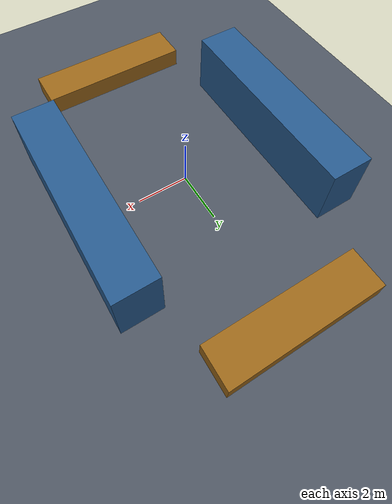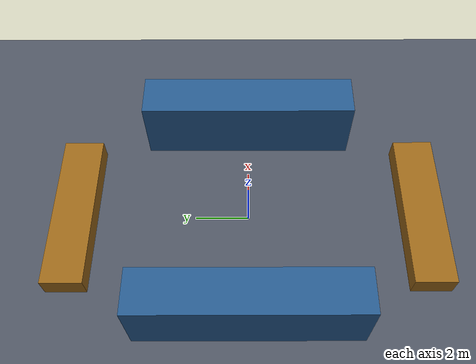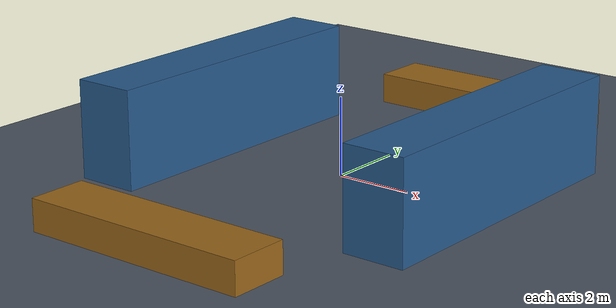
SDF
<?xml version="1.0" ?>
<sdf version="1.8">
  <world name="small_warehouse">
    <physics name="1ms" type="ignored">
      <max_step_size>0.002</max_step_size>
      <real_time_factor>1.0</real_time_factor>
    </physics>

    <plugin filename="libignition-gazebo-physics-system.so" name="ignition::gazebo::systems::Physics"/>
    <plugin filename="libignition-gazebo-user-commands-system.so" name="ignition::gazebo::systems::UserCommands"/>
    <plugin filename="libignition-gazebo-scene-broadcaster-system.so" name="ignition::gazebo::systems::SceneBroadcaster"/>
    <plugin filename="libignition-gazebo-sensors-system.so" name="ignition::gazebo::systems::Sensors">
      <render_engine>ogre2</render_engine>
    </plugin>

    <!-- Sun -->
    <light type="directional" name="sun">
      <cast_shadows>true</cast_shadows>
      <pose>0 0 20 0 0 0</pose>
      <diffuse>0.8 0.8 0.8 1</diffuse>
      <specular>0.2 0.2 0.2 1</specular>
      <direction>-0.5 0.1 -0.9</direction>
    </light>

    <!-- Warehouse Floor -->
    <model name="ground_plane">
      <static>true</static>
      <link name="link">
        <collision name="collision">
          <geometry>
            <plane>
              <normal>0 0 1</normal>
              <size>50 40</size>
            </plane>
          </geometry>
        </collision>
        <visual name="visual">
          <geometry>
            <plane>
              <normal>0 0 1</normal>
              <size>50 40</size>
            </plane>
          </geometry>
          <material>
            <ambient>0.2 0.22 0.25 1</ambient>
            <diffuse>0.3 0.33 0.38 1</diffuse>
          </material>
        </visual>
      </link>
    </model>

    <!-- Warehouse Shelf 1 (Left Aisle) -->
    <model name="shelf_row_1">
      <static>true</static>
      <pose>-4.0 0 1.25 0 0 0</pose>
      <link name="link">
        <collision name="col">
          <geometry><box><size>1.6 8.0 2.5</size></box></geometry>
        </collision>
        <visual name="vis">
          <geometry><box><size>1.6 8.0 2.5</size></box></geometry>
          <material><diffuse>0.15 0.35 0.55 1</diffuse></material>
        </visual>
      </link>
    </model>

    <!-- Warehouse Shelf 2 (Right Aisle) -->
    <model name="shelf_row_2">
      <static>true</static>
      <pose>4.0 0 1.25 0 0 0</pose>
      <link name="link">
        <collision name="col">
          <geometry><box><size>1.6 8.0 2.5</size></box></geometry>
        </collision>
        <visual name="vis">
          <geometry><box><size>1.6 8.0 2.5</size></box></geometry>
          <material><diffuse>0.15 0.35 0.55 1</diffuse></material>
        </visual>
      </link>
    </model>

    <!-- Staging Dock A (North) -->
    <model name="dock_station_a">
      <static>true</static>
      <pose>0 6.5 0.4 0 0 0</pose>
      <link name="link">
        <collision name="col">
          <geometry><box><size>6.0 1.5 0.8</size></box></geometry>
        </collision>
        <visual name="vis">
          <geometry><box><size>6.0 1.5 0.8</size></box></geometry>
          <material><diffuse>0.6 0.4 0.1 1</diffuse></material>
        </visual>
      </link>
    </model>

    <!-- Packing Station B (South) -->
    <model name="dock_station_b">
      <static>true</static>
      <pose>0 -6.5 0.4 0 0 0</pose>
      <link name="link">
        <collision name="col">
          <geometry><box><size>6.0 1.5 0.8</size></box></geometry>
        </collision>
        <visual name="vis">
          <geometry><box><size>6.0 1.5 0.8</size></box></geometry>
          <material><diffuse>0.6 0.4 0.1 1</diffuse></material>
        </visual>
      </link>
    </model>

  </world>
</sdf>
